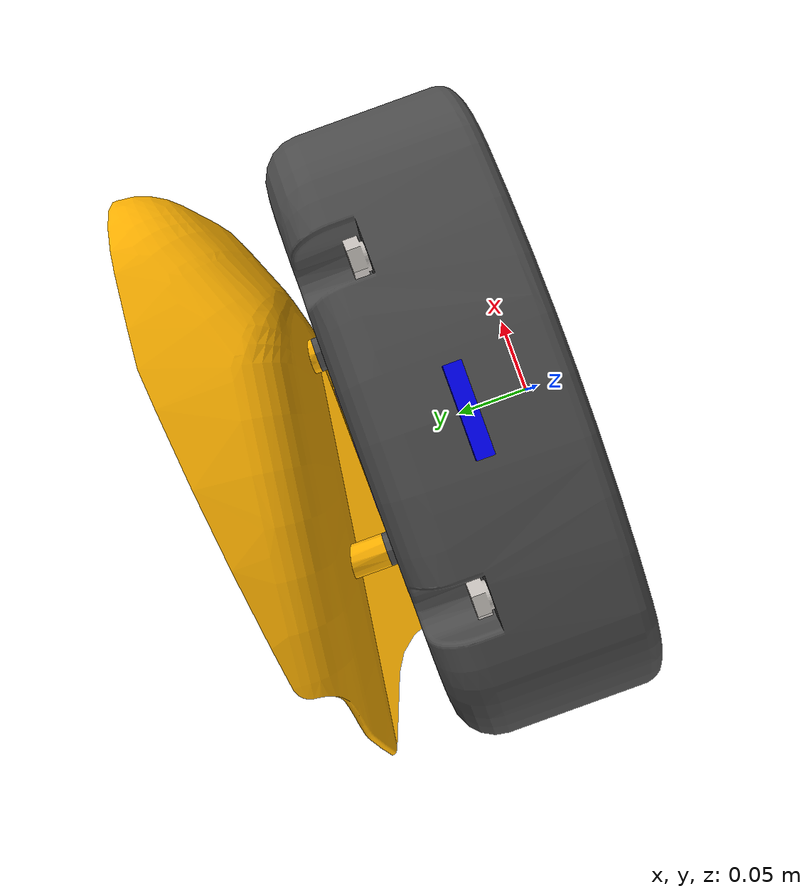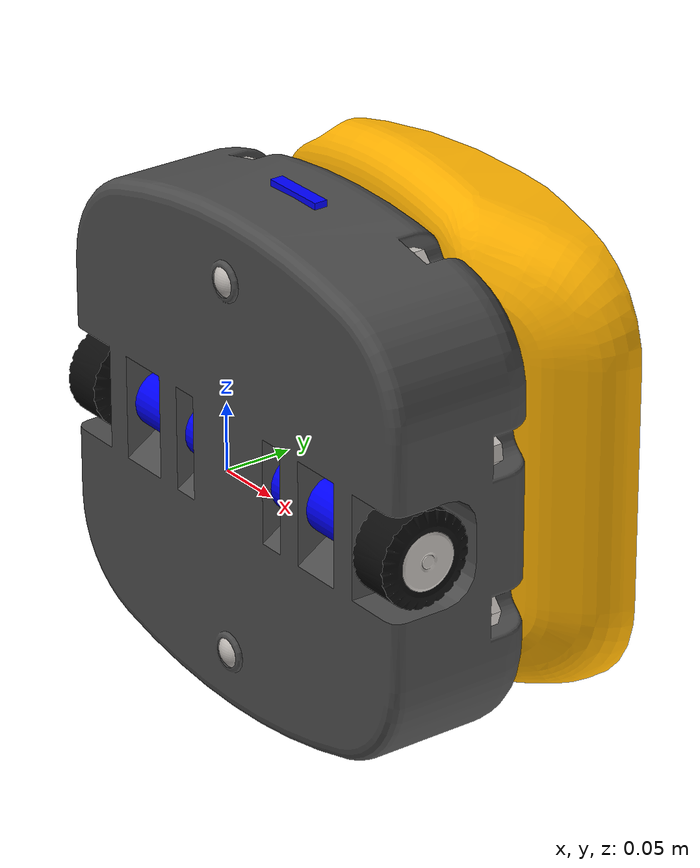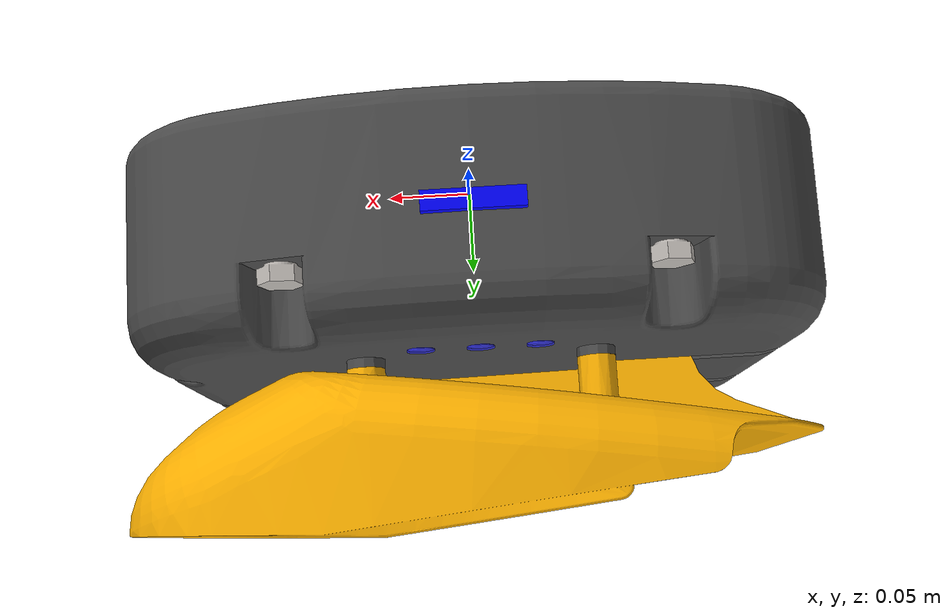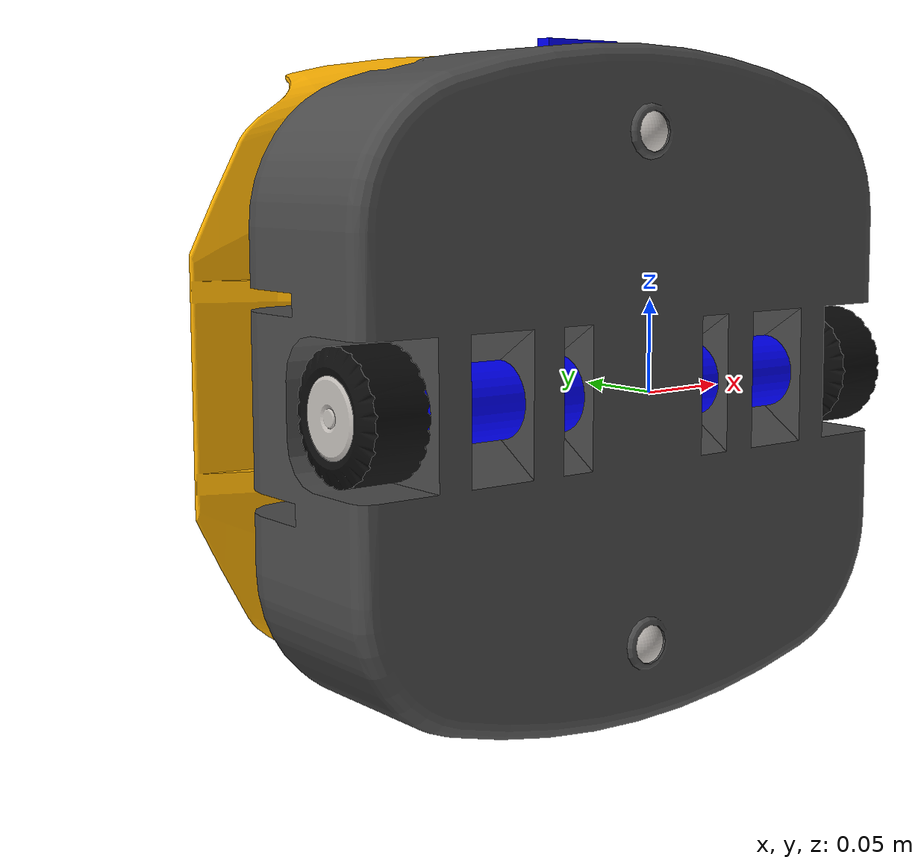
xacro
<?xml version="1.0" encoding="utf-8"?>
<robot name="sorter"
	xmlns:xacro="http://www.ros.org/wiki/xacro">
	<!-- Materials -->
	<xacro:include filename="$(find sorter_description)/urdf/sorter_materials.xacro" />
	<!-- abot_base -->
	<link name="sorter_base">
		<inertial>
      			<origin
					xyz="0.0068695 0.60786 -8.8981E-05"
					rpy="0 0 0" />
      			<mass
        			value="1.4064" />
		      	<inertia
					ixx="0.016166"
					ixy="-2.2307E-05"
					ixz="-3.9376E-09"
					iyy="0.028186"
					iyz="7.2819E-07"
					izz="0.015275" />
    		</inertial>
		<visual>
			<origin xyz="0 0 0" rpy="0 0 0" />
			<geometry>
			        <mesh filename="package://sorter_description/meshes/sorter_base.STL" />
			</geometry>
      			<material name="BlackBase"/>
		</visual>
		<collision>
			<origin xyz="0 0 0" rpy="0 0 0" />
			<geometry>
				<mesh filename="package://sorter_description/meshes/sorter_base.STL" />
			</geometry>
		</collision>
	</link>
	<gazebo reference="sorter_base">
	    	<material>Gazebo/DarkGrey</material>
	    	<selfCollide>True</selfCollide>
  	</gazebo>
	<!-- base_link -->
	<link name="base_link">
		<visual>
			<origin xyz="0 0 0" rpy="0 0 0" />
			<geometry>
				<sphere radius="0.001" />
			</geometry>
		</visual>
	</link>
	<joint name="base_link_to_sorter_base" type="fixed">
		<origin xyz="0 0 0" rpy="0 0 0" />
		<parent link="base_link" />
		<child link="sorter_base" />
	</joint>

	<!-- gazebo plugins -->
	<xacro:include filename="$(find sorter_description)/urdf/sorter.gazebo" />
	<!-- Motors -->
	<xacro:include filename="$(find sorter_description)/urdf/sorter_left_motor.xacro" />
	<xacro:include filename="$(find sorter_description)/urdf/sorter_right_motor.xacro" />
	<!-- Wheels -->
	<xacro:include filename="$(find sorter_description)/urdf/sorter_left_wheel.xacro" />
	<xacro:include filename="$(find sorter_description)/urdf/sorter_right_wheel.xacro" />
	<!-- Covers -->
	<xacro:include filename="$(find sorter_description)/urdf/sorter_left_cover.xacro" />
	<xacro:include filename="$(find sorter_description)/urdf/sorter_right_cover.xacro" />
	<!-- Caster wheels -->
	<xacro:include filename="$(find sorter_description)/urdf/sorter_front_caster_wheel.xacro" />
	<xacro:include filename="$(find sorter_description)/urdf/sorter_back_caster_wheel.xacro" />
	<!-- Scoop -->
	<xacro:include filename="$(find sorter_description)/urdf/sorter_scoop.xacro" />
	<!-- Decoration -->
	<xacro:include filename="$(find sorter_description)/urdf/sorter_bolts.xacro" />
	<xacro:include filename="$(find sorter_description)/urdf/sorter_leds.xacro" />

	<!-- Sensors -->
	<xacro:include filename="$(find sorter_description)/urdf/sorter_camera.xacro" />

</robot>

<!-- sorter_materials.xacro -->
<robot
	xmlns:xacro="http://www.ros.org/wiki/xacro">
	<material name="Red">
		<color rgba="1.0 0.0 0.0 1.0"/>
	</material>
	<material name="Green">
		<color rgba="0.0 1.0 0.0 1.0"/>
	</material>
	<material name="Blue">
		<color rgba="0.0 0.0 1.0 1.0"/>
	</material>
	<material name="White">
		<color rgba="1.0 1.0 1.0 1.0"/>
	</material>
	<material name="Yellow">
		<color rgba="1.0 1.0 0.0 1.0"/>
	</material>
	<material name="BlackBase">
		<color rgba="0.3 0.3 0.3 1.0"/>
	</material>
	<material name="BlackWheel">
		<color rgba="0.05 0.05 0.05 1.0"/>
	</material>
	<material name="Silver">
		<color rgba="0.77647 0.75686 0.73725 1.0"/>
	</material>
	<material name="OrangeScoop">
		<color rgba="1.0 0.7 0.0 1.0"/>
	</material>
	<material name="BlueLed">
		<color rgba="0.2 0.2 1.0 0.8"/>
	</material>
</robot>

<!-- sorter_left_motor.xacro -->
<robot name="sorter"
	xmlns:xacro="http://www.ros.org/wiki/xacro">
	<!-- left_motor -->
	<link name="sorter_left_motor">
		<inertial>
      			<origin
			xyz="-1.7924E-16 -6.5919E-17 0.049831"
			rpy="0 0 0" />
			<mass
			value="0.10528" />
			<inertia
			ixx="0.010048"
			ixy="1.3044E-33"
			ixz="2.6532E-17"
			iyy="0.010048"
			iyz="-3.3687E-19"
			izz="2.4448E-03" />
    		</inertial>
		<visual>
			<origin xyz="0 0 0" rpy="0 0 0" />
			<geometry>
			        <mesh filename="package://sorter_description/meshes/sorter_left_motor.STL" />
			</geometry>
      			<material name="Blue"/>
		</visual>
		<collision>
			<origin xyz="0 0 0" rpy="0 0 0" />
			<geometry>
				<mesh filename="package://sorter_description/meshes/sorter_left_motor.STL" />
			</geometry>
		</collision>
	</link>
	<gazebo reference="sorter_left_motor">
	    	<material>Gazebo/Blue</material>
	    	<selfCollide>True</selfCollide>
  	</gazebo>
	<joint name="left_motor2base" type="fixed">
		<origin
		xyz="0.04 0.028 0"
		rpy="0 -1.5708 3.1416" />
		<parent
		link="sorter_base" />
		<child
		link="sorter_left_motor" />
		<axis
		xyz="0 0 1" />
	</joint>
</robot>

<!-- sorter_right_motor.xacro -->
<robot name="sorter"
	xmlns:xacro="http://www.ros.org/wiki/xacro">
	<!-- right_motor -->
	<link name="sorter_right_motor">
		<inertial>
      			<origin
			xyz="-1.4919E-16 -1.3184E-16 -0.049831"
			rpy="0 0 0" />
			<mass
			value="0.10528" />
			<inertia
			ixx="0.010048"
			ixy="5.421E-19"
			ixz="5.9485E-19"
			iyy="0.010048"
			iyz="1.7257E-18"
			izz="2.4448E-03" />
    		</inertial>
		<visual>
			<origin xyz="0 0 0" rpy="0 0 0" />
			<geometry>
			        <mesh filename="package://sorter_description/meshes/sorter_right_motor.STL" />
			</geometry>
      			<material name="Blue"/>
		</visual>
		<collision>
			<origin xyz="0 0 0" rpy="0 0 0" />
			<geometry>
				<mesh filename="package://sorter_description/meshes/sorter_right_motor.STL" />
			</geometry>
		</collision>
	</link>
	<gazebo reference="sorter_right_motor">
	    	<material>Gazebo/Blue</material>
	    	<selfCollide>True</selfCollide>
  	</gazebo>
	<joint name="right_motor2base" type="fixed">
		<origin
		xyz="-0.04 0.028 0"
		rpy="-1.5708 0.3918 -1.5708" />
		<parent
		link="sorter_base" />
		<child
		link="sorter_right_motor" />
		<axis
		xyz="0 0 1" />
	</joint>
</robot>

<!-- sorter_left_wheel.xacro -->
<robot name="sorter"
	xmlns:xacro="http://www.ros.org/wiki/xacro">
	<!-- right_motor -->
	<link name="sorter_left_wheel">
		<inertial>
			<origin
			xyz="1.837E-05 -1.5263E-10 -0.097893"
			rpy="0 0 0" />
			<mass
			value="0.20866" />
			<inertia
			ixx="0.0001288"
			ixy="-9.1557E-13"
			ixz="1.598E-07"
			iyy="0.00012883"
			iyz="-1.6689E-12"
			izz="8.5081E-05" />
    		</inertial>
		<visual>
			<origin xyz="0 0 0" rpy="0 0 0" />
			<geometry>
			        <mesh filename="package://sorter_description/meshes/sorter_left_wheel.STL" />
			</geometry>
      			<material name="BlackWheel"/>
		</visual>
		<collision>
			<origin xyz="0 0 0" rpy="0 0 0" />
			<geometry>
				<mesh filename="package://sorter_description/meshes/sorter_left_wheel.STL" />
			</geometry>
		</collision>
	</link>
	<gazebo reference="sorter_left_wheel">
	    	<material>Gazebo/FlatBlack</material>
	    	<selfCollide>True</selfCollide>
  	</gazebo>
	<joint name="left_wheel2motor" type="continuous">
		<origin
		xyz="0 0 0.006"
		rpy="3.1416 0 -1.179" />
		<parent
		link="sorter_left_motor" />
		<child
		link="sorter_left_wheel" />
		<axis
		xyz="0 0 1" />
	</joint>

	<transmission name="left_wheel_trans">
	<type>transmission_interface/SimpleTransmission</type>
	<joint name="left_wheel2motor">
		<hardwareInterface>hardware_interface/EffortJointInterface</hardwareInterface>
	</joint>
	<actuator name="left_wheel_Motor">
		<hardwareInterface>EffortJointInterface</hardwareInterface>
		<mechanicalReduction>10</mechanicalReduction>
	</actuator>
	</transmission>

</robot>

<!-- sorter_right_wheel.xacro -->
<robot name="sorter"
	xmlns:xacro="http://www.ros.org/wiki/xacro">
	<!-- right_motor -->
	<link name="sorter_right_wheel">
		<inertial>
			<origin
			xyz="0.09789269266203 1.69789019565814E-05 7.01443180960507E-06"
			rpy="0 0 0" />
			<mass
			value="0.208661050963923" />
			<inertia
			ixx="8.50807943773624E-05"
			ixy="-1.4769453948552E-07"
			ixz="-6.10195288192908E-08"
			iyy="0.000128800407810981"
			iyz="-1.02105267664418E-08"
			izz="0.000128820903495708" />
    		</inertial>
		<visual>
			<origin xyz="0 0 0" rpy="0 0 0" />
			<geometry>
			        <mesh filename="package://sorter_description/meshes/sorter_right_wheel.STL" />
			</geometry>
      			<material name="BlackWheel"/>
		</visual>
		<collision>
			<origin xyz="0 0 0" rpy="0 0 0" />
			<geometry>
				<mesh filename="package://sorter_description/meshes/sorter_right_wheel.STL" />
			</geometry>
		</collision>
	</link>
	<gazebo reference="sorter_right_wheel">
	    	<material>Gazebo/FlatBlack</material>
	    	<selfCollide>True</selfCollide>
  	</gazebo>
	<joint name="right_wheel2motor" type="continuous">
		<origin
		xyz="0 0 -0.006"
		rpy="0 1.5708 0" />
		<parent
		link="sorter_right_motor" />
		<child
		link="sorter_right_wheel" />
		<axis
		xyz="1 0 0" />
	</joint>

	<transmission name="right_wheel_trans">
	<type>transmission_interface/SimpleTransmission</type>
	<joint name="right_wheel2motor">
		<hardwareInterface>hardware_interface/EffortJointInterface</hardwareInterface>
	</joint>
	<actuator name="right_wheel_Motor">
		<hardwareInterface>EffortJointInterface</hardwareInterface>
		<mechanicalReduction>10</mechanicalReduction>
	</actuator>
	</transmission>

</robot>

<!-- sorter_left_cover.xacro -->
<robot name="sorter"
	xmlns:xacro="http://www.ros.org/wiki/xacro">
	<!-- right_motor -->
	<link name="sorter_left_cover">
		<inertial>
			<origin
			xyz="0.0019472 -3.4694E-18 1.2467E-16"
			rpy="0 0 0" />
			<mass
			value="0.043121" />
			<inertia
			ixx="9.3734E-06"
			ixy="4.4747E-23"
			ixz="-1.0247E-23"
			iyy="4.742E-06"
			iyz="-1.0827E-28"
			izz="4.742E-06" />
    		</inertial>
		<visual>
			<origin xyz="0 0 0" rpy="0 0 0" />
			<geometry>
			        <mesh filename="package://sorter_description/meshes/sorter_left_cover.STL" />
			</geometry>
      			<material name="Silver"/>
		</visual>
		<collision>
			<origin xyz="0 0 0" rpy="0 0 0" />
			<geometry>
				<mesh filename="package://sorter_description/meshes/sorter_left_cover.STL" />
			</geometry>
		</collision>
	</link>
	<gazebo reference="sorter_left_cover">
	    	<material>PR2/Grey1</material>
	    	<selfCollide>True</selfCollide>
  	</gazebo>
	<joint  name="left_cover2wheel" type="fixed">
		<origin
		xyz="0 0 -0.136"
		rpy="1.179 1.5708 0" />
		<parent
		link="sorter_left_wheel" />
		<child
		link="sorter_left_cover" />
		<axis
		xyz="1 0 0" />
	</joint>

</robot>

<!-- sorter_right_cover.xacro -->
<robot name="sorter"
	xmlns:xacro="http://www.ros.org/wiki/xacro">
	<!-- right_motor -->
	<link name="sorter_right_cover">
		<inertial>
			<origin
			xyz="0.00194719134720706 -6.55725473919233E-16 -2.28983498828939E-16"
			rpy="0 0 0" />
			<mass
			value="0.0431207702228541" />
			<inertia
			ixx="9.37344452981365E-06"
			ixy="-1.57117042541872E-20"
			ixz="-5.56763650351688E-21"
			iyy="4.74203410091467E-06"
			iyz="1.05879118406788E-22"
			izz="4.74203410091467E-06" />
    		</inertial>
		<visual>
			<origin xyz="0 0 0" rpy="0 0 0" />
			<geometry>
			        <mesh filename="package://sorter_description/meshes/sorter_right_cover.STL" />
			</geometry>
      			<material name="Silver"/>
		</visual>
		<collision>
			<origin xyz="0 0 0" rpy="0 0 0" />
			<geometry>
				<mesh filename="package://sorter_description/meshes/sorter_right_cover.STL" />
			</geometry>
		</collision>
	</link>
	<gazebo reference="sorter_right_cover">
	    	<material>PR2/Grey1</material>
	    	<selfCollide>True</selfCollide>
  	</gazebo>
	<joint name="right_cover2wheel" type="fixed">
		<origin
		xyz="0.136 0 0"
		rpy="0 0 0" />
		<parent
		link="sorter_right_wheel" />
		<child
		link="sorter_right_cover" />
		<axis
		xyz="1 0 0" />
	</joint>

</robot>

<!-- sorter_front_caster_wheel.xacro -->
<robot name="sorter"
	xmlns:xacro="http://www.ros.org/wiki/xacro">
	<!-- right_motor -->
	<link name="sorter_front_caster_wheel">
		<inertial>
			<origin
			xyz="5.18682319317065E-16 -5.20417042793042E-18 0.015"
			rpy="0 0 0" />
			<mass
			value="0.038170350741116" />
			<inertia
			ixx="3.43533156670044E-06"
			ixy="0"
			ixz="5.12496038246219E-45"
			iyy="3.43533156670044E-06"
			iyz="-1.63998732234046E-38"
			izz="3.43533156670044E-06" />
    		</inertial>
		<visual>
			<origin xyz="0 0 0" rpy="0 0 0" />
			<geometry>
			        <mesh filename="package://sorter_description/meshes/sorter_front_caster_wheel.STL" />
			</geometry>
      			<material name="Silver"/>
		</visual>
		<collision>
			<origin xyz="0 0 0" rpy="0 0 0" />
			<geometry>
				<mesh filename="package://sorter_description/meshes/sorter_front_caster_wheel.STL" />
			</geometry>
		</collision>
	</link>
	<gazebo reference="sorter_front_caster_wheel">
	    	<material>Gazebo/GreyGradientSky</material>
	    	<selfCollide>True</selfCollide>
  	</gazebo>
	<joint name="front_caster_wheel2base" type="continuous">
		<origin
		xyz="0 0.009 0.12444"
		rpy="0 0 0" />
		<parent
		link="sorter_base" />
		<child
		link="sorter_front_caster_wheel" />
		<axis
		xyz="0 0 1" />
	</joint>
</robot>

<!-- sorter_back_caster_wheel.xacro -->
<robot name="sorter"
	xmlns:xacro="http://www.ros.org/wiki/xacro">
	<!-- right_motor -->
	<link name="sorter_back_caster_wheel">
		<inertial>
			<origin
			xyz="-4.90926743701436E-16 2.08166817117217E-18 -0.015"
			rpy="0 0 0" />
			<mass
			value="0.038170350741116" />
			<inertia
			ixx="3.43533156670044E-06"
			ixy="0"
			ixz="5.12496038246219E-45"
			iyy="3.43533156670044E-06"
			iyz="-1.63998732234046E-38"
			izz="3.43533156670044E-06" />
    		</inertial>
		<visual>
			<origin xyz="0 0 0" rpy="0 0 0" />
			<geometry>
			        <mesh filename="package://sorter_description/meshes/sorter_back_caster_wheel.STL" />
			</geometry>
      			<material name="Silver"/>
		</visual>
		<collision>
			<origin xyz="0 0 0" rpy="0 0 0" />
			<geometry>
				<mesh filename="package://sorter_description/meshes/sorter_back_caster_wheel.STL" />
			</geometry>
		</collision>
	</link>
	<gazebo reference="sorter_back_caster_wheel">
	    	<material>Gazebo/GreyGradientSky</material>
	    	<selfCollide>True</selfCollide>
  	</gazebo>
	<joint name="back_caster_wheel2base" type="continuous">
		<origin
		xyz="0 0.009 -0.12444"
		rpy="0 0 0" />
		<parent
		link="sorter_base" />
		<child
		link="sorter_back_caster_wheel" />
		<axis
		xyz="0 0 1" />
	</joint>
</robot>

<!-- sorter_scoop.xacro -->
<robot name="sorter"
	xmlns:xacro="http://www.ros.org/wiki/xacro">
	<!-- right_motor -->
	<link name="sorter_scoop">
		<inertial>
			<origin
			xyz="0.078931 1.2977E-06 0.14697"
			rpy="0 0 0" />
			<mass
			value="0.15664" />
			<inertia
			ixx="0.30098"
			ixy="3.2581E-07"
			ixz="-3.5132E-03"
			iyy="0.15134"
			iyz="5.1464E-06"
			izz="0.16037" />
    		</inertial>
		<visual>
			<origin xyz="0 0 0" rpy="0 0 0" />
			<geometry>
			        <mesh filename="package://sorter_description/meshes/sorter_scoop.STL" />
			</geometry>
      			<material name="OrangeScoop"/>
		</visual>
		<collision>
			<origin xyz="0 0 0" rpy="0 0 0" />
			<geometry>
				<mesh filename="package://sorter_description/meshes/sorter_scoop.STL" />
			</geometry>
		</collision>
	</link>
	<gazebo reference="sorter_scoop">
	    	<material>Gazebo/Orange</material>
	    	<selfCollide>True</selfCollide>
  	</gazebo>
	<joint name="scoop2base" type="revolute">
		<origin
		xyz="-0.13014 0.07 0"
		rpy="1.5708 0 1.5708" />
		<parent
		link="sorter_base" />
		<child
		link="sorter_scoop" />
		<axis
		xyz="0 1 0" />
		<limit
		lower="0"
		upper="1.5708"
		effort="0"
		velocity="0" />
	</joint>
</robot>

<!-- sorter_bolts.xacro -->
<robot name="sorter"
	xmlns:xacro="http://www.ros.org/wiki/xacro">
	<!-- right_motor -->
	<link name="sorter_bolts">
		<inertial>
			<origin
			xyz="-0.0053664 -0.1195 -0.11641"
			rpy="0 0 0" />
			<mass
			value="0.015284" />
			<inertia
			ixx="8.0348E-07"
			ixy="-5.9192E-22"
			ixz="-6.1236E-23"
			iyy="5.1585E-07"
			iyz="1.4823E-21"
			izz="5.1585E-07" />
    		</inertial>
		<visual>
			<origin xyz="0 0 0" rpy="0 0 0" />
			<geometry>
			        <mesh filename="package://sorter_description/meshes/sorter_bolts.STL" />
			</geometry>
      			<material name="Silver"/>
		</visual>
		<collision>
			<origin xyz="0 0 0" rpy="0 0 0" />
			<geometry>
				<mesh filename="package://sorter_description/meshes/sorter_bolts.STL" />
			</geometry>
		</collision>
	</link>
	<gazebo reference="sorter_bolts">
	    	<material>PR2/Grey0</material>
	    	<selfCollide>True</selfCollide>
  	</gazebo>
	<joint name="bolts2base" type="fixed">
		<origin
		xyz="0.094041 0.08 0.16282"
		rpy="0.57871 0 -1.5708" />
		<parent
		link="sorter_base" />
		<child
		link="sorter_bolts" />
		<axis
		xyz="0 0 0" />
	</joint>
</robot>

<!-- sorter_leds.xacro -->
<robot name="sorter"
	xmlns:xacro="http://www.ros.org/wiki/xacro">
	<!-- right_motor -->
	<link name="sorter_leds">
		<inertial>
			<origin
			xyz="0 0 0"
			rpy="0 0 0" />
			<mass
			value="0" />
			<inertia
			ixx="0"
			ixy="0"
			ixz="0"
			iyy="0"
			iyz="0"
			izz="0" />
    		</inertial>
		<visual>
			<origin xyz="0 0 0" rpy="0 0 0" />
			<geometry>
			        <mesh filename="package://sorter_description/meshes/sorter_leds.STL" />
			</geometry>
      			<material name="BlueLed"/>
		</visual>
		<collision>
			<origin xyz="0 0 0" rpy="0 0 0" />
			<geometry>
				<mesh filename="package://sorter_description/meshes/sorter_leds.STL" />
			</geometry>
		</collision>
	</link>
	<gazebo reference="sorter_leds">
	    	<material>Gazebo/BlueTransparent</material>
	    	<selfCollide>True</selfCollide>
  	</gazebo>
	<joint name="leds2base" type="fixed">
		<origin
		xyz="0.03 0.118 0.133"
		rpy="0 0 1.5708" />
		<parent
		link="sorter_base" />
		<child
		link="sorter_leds" />
		<axis
		xyz="1 0 0" />
	</joint>
</robot>

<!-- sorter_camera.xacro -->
<robot name="sorter"
	xmlns:xacro="http://www.ros.org/wiki/xacro">
  	<!-- Camera -->
  	<xacro:property name="camera_size" value="0.05" /> <!-- Size of square 'camera' box -->
	<link name="sorter_camera">
		<collision>
			<origin xyz="0 0 0" rpy="0 0 0"/>
			<geometry>
			<box size="${camera_size/5} ${camera_size} ${camera_size/5}"/>
			</geometry>
		</collision>
		<visual>
			<origin xyz="0 0 0" rpy="0 0 0"/>
			<geometry>
			<box size="${camera_size/5} ${camera_size} ${camera_size/5}"/>
			</geometry>
			<material name="Blue"/>
		</visual>
		<inertial>
			<mass value="0" />
			<origin xyz="0 0 0" rpy="0 0 0"/>
			<inertia ixx="0" ixy="0" ixz="0" iyy="0" iyz="0" izz="0" />
		</inertial>
	</link>
	<gazebo reference="sorter_camera">
	    	<material>Gazebo/BlueTransparent</material>
	    	<selfCollide>True</selfCollide>
  	</gazebo>
  	<joint name="camera2camera_rotate" type="fixed">
		<origin xyz="0 0.06 0.185" rpy="-1.57 -1.57 0"/>
		<parent link="sorter_base"/>
		<child link="sorter_camera"/>
	</joint>
</robot>
